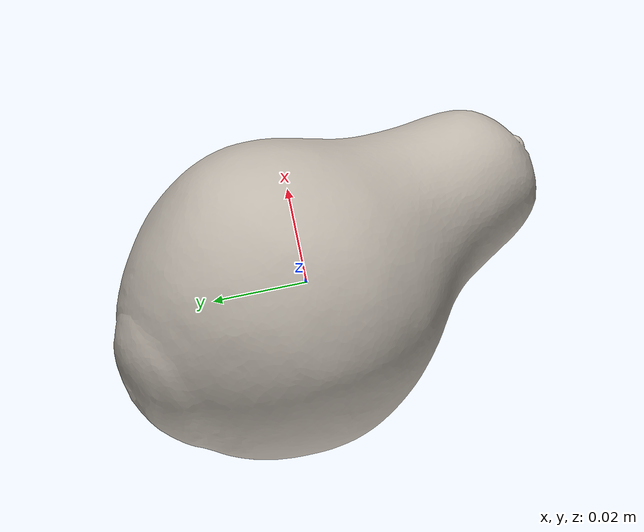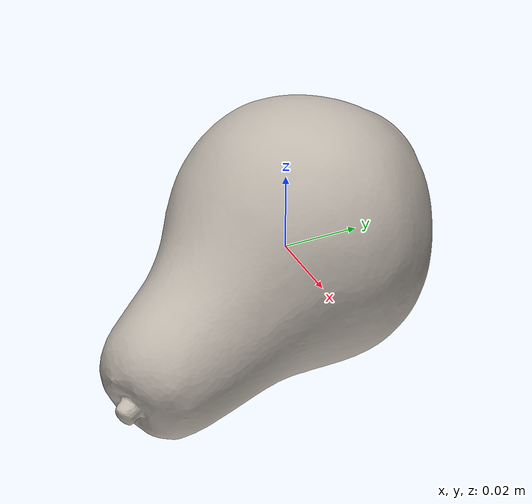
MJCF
<mujoco model="pear">
  <compiler angle="radian" />

  <asset>
    <mesh name="pear_visual_mesh" file="pear/textured.obj" />
    <mesh name="pear_collision_mesh_0" file="pear/textured_coacd_0.stl" />
    <mesh name="pear_collision_mesh_1" file="pear/textured_coacd_1.stl" />
    <mesh name="pear_collision_mesh_2" file="pear/textured_coacd_2.stl" />
    <mesh name="pear_collision_mesh_3" file="pear/textured_coacd_3.stl" />
    <texture name="pear_texture" type="2d" file="pear/texture_map.png" />
    <material name="pear_material" texture="pear_texture" />
  </asset>

  <worldbody>
    <body name="pear" pos="0 0 0" euler="0 0 0">
      <freejoint name="pear_joint" />
      <geom name="pear_visual_geom" type="mesh" mesh="pear_visual_mesh" material="pear_material" pos="-0.0 -0.0 0.0" euler="0 0 0" contype="0" conaffinity="0" group="0" />
      <geom name="pear_collision_geom_0" type="mesh" mesh="pear_collision_mesh_0" pos="-0.0 -0.0 0.0" euler="0 0 0" contype="1" conaffinity="1" group="3" />
      <geom name="pear_collision_geom_1" type="mesh" mesh="pear_collision_mesh_1" pos="-0.0 -0.0 0.0" euler="0 0 0" contype="1" conaffinity="1" group="3" />
      <geom name="pear_collision_geom_2" type="mesh" mesh="pear_collision_mesh_2" pos="-0.0 -0.0 0.0" euler="0 0 0" contype="1" conaffinity="1" group="3" />
      <geom name="pear_collision_geom_3" type="mesh" mesh="pear_collision_mesh_3" pos="-0.0 -0.0 0.0" euler="0 0 0" contype="1" conaffinity="1" group="3" />
      <inertial pos="0 0 0" euler="0 0 0" mass="0.049" diaginertia="0.001 0.001 0.001" />
    </body>
  </worldbody>
</mujoco>
